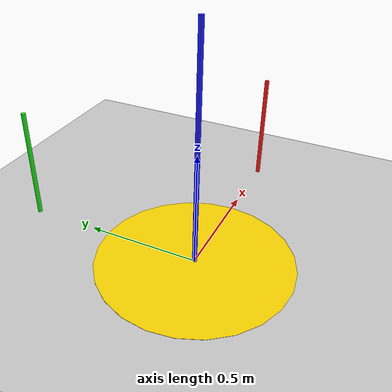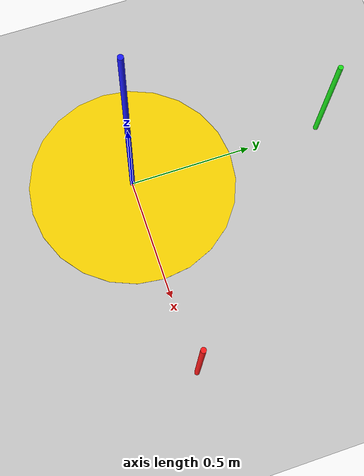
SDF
<?xml version="1.0" ?>
<sdf version="1.6">
  <world name="qav250_twin_world">
    <!-- Suelo y luz de sol -->
    <include>
      <uri>model://ground_plane</uri>
    </include>
    <include>
      <uri>model://sun</uri>
    </include>

    <!-- Plugin de ROS 2 para permitir mover modelos cinemáticamente usando temas (topics) -->
    <plugin name="gazebo_ros_state" filename="libgazebo_ros_state.so">
      <ros>
        <namespace>/</namespace>
      </ros>
    </plugin>

    <physics name="default_physics" default="true" type="ode">
      <max_step_size>0.001</max_step_size>
      <real_time_factor>1.0</real_time_factor>
      <real_time_update_rate>1000.0</real_time_update_rate>
    </physics>

    <gui fullscreen='false'>
      <camera name='user_camera'>
        <pose>1.5 -1.5 1.0 0 0.3 2.35</pose>
        <view_controller>orbit</view_controller>
        <projection_type>perspective</projection_type>
      </camera>
    </gui>

    <!--  OBJETOS DE REFERENCIA VISUAL MINIMALISTA                             -->
    <!--  Solo la plataforma de despegue y los ejes para no cargar la PC       -->

    <!-- ── PLATAFORMA DE DESPEGUE (Helipad) ─────────────────────────────── -->
    <model name="helipad">
      <static>true</static>
      <pose>0 0 0.001 0 0 0</pose>
      <link name="helipad_link">
        <visual name="helipad_circle">
          <geometry>
            <cylinder>
              <radius>0.4</radius>
              <length>0.002</length>
            </cylinder>
          </geometry>
          <material>
            <ambient>0.2 0.2 0.2 1</ambient>
            <diffuse>0.3 0.3 0.3 1</diffuse>
          </material>
        </visual>
        <!-- Anillo exterior amarillo -->
        <visual name="helipad_ring">
          <pose>0 0 0.001 0 0 0</pose>
          <geometry>
            <cylinder>
              <radius>0.42</radius>
              <length>0.001</length>
            </cylinder>
          </geometry>
          <material>
            <ambient>0.8 0.7 0.0 1</ambient>
            <diffuse>1.0 0.85 0.0 1</diffuse>
          </material>
        </visual>
      </link>
    </model>

    <!-- ── EJES DE REFERENCIA XYZ ────────────────────────────────────────── -->
    <!-- Poste X (ROJO) -->
    <model name="eje_x">
      <static>true</static>
      <pose>0.8 0 0 0 0 0</pose>
      <link name="eje_x_link">
        <visual name="poste_x">
          <pose>0 0 0.25 0 0 0</pose>
          <geometry>
            <cylinder>
              <radius>0.01</radius>
              <length>0.5</length>
            </cylinder>
          </geometry>
          <material>
            <ambient>0.8 0.0 0.0 1</ambient>
            <diffuse>1.0 0.1 0.1 1</diffuse>
          </material>
        </visual>
      </link>
    </model>

    <!-- Poste Y (VERDE) -->
    <model name="eje_y">
      <static>true</static>
      <pose>0 0.8 0 0 0 0</pose>
      <link name="eje_y_link">
        <visual name="poste_y">
          <pose>0 0 0.25 0 0 0</pose>
          <geometry>
            <cylinder>
              <radius>0.01</radius>
              <length>0.5</length>
            </cylinder>
          </geometry>
          <material>
            <ambient>0.0 0.7 0.0 1</ambient>
            <diffuse>0.1 0.9 0.1 1</diffuse>
          </material>
        </visual>
      </link>
    </model>

    <!-- Poste Z (AZUL) -->
    <model name="eje_z">
      <static>true</static>
      <pose>0 0 0 0 0 0</pose>
      <link name="eje_z_link">
        <visual name="poste_z">
          <pose>0 0 0.5 0 0 0</pose>
          <geometry>
            <cylinder>
              <radius>0.01</radius>
              <length>1.0</length>
            </cylinder>
          </geometry>
          <material>
            <ambient>0.0 0.0 0.8 1</ambient>
            <diffuse>0.1 0.1 1.0 1</diffuse>
          </material>
        </visual>
      </link>
    </model>

  </world>
</sdf>
